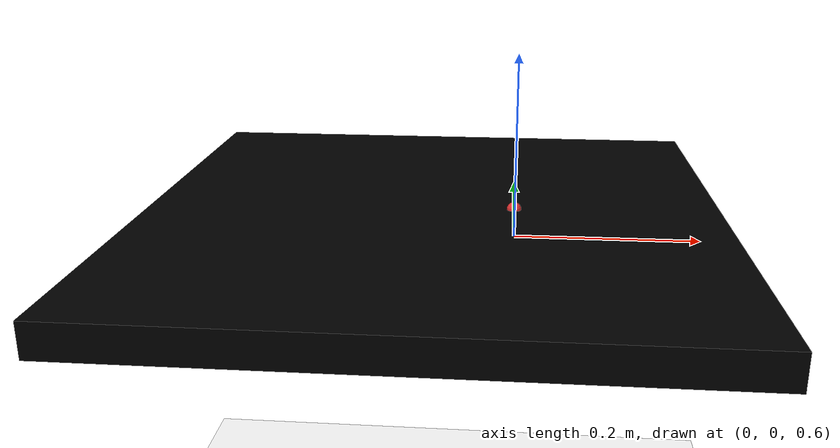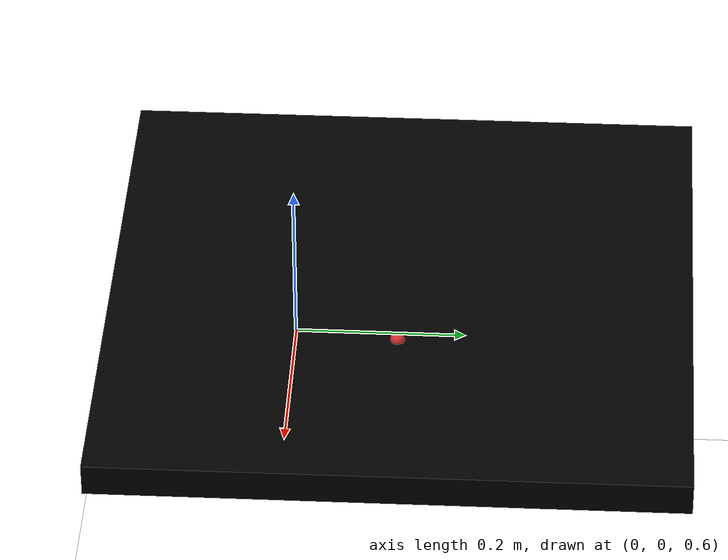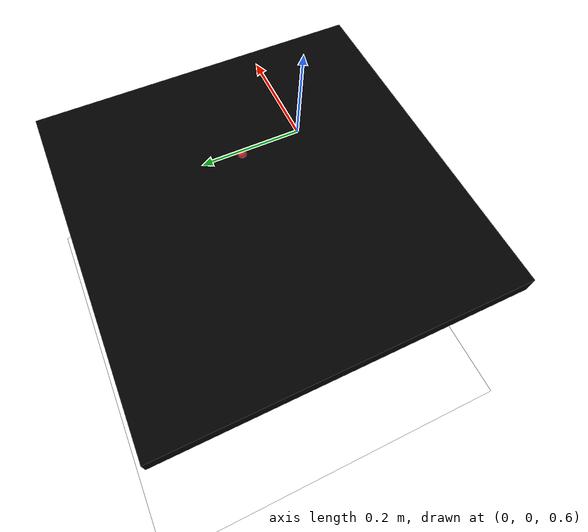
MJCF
<mujoco model="two_bins_arena">
  <asset>
    <texture builtin="gradient" height="256" rgb1=".9 .9 1." rgb2=".2 .3 .4" type="skybox" width="256"/>
    <texture builtin="checker" height="512" name="texplane" rgb1=".2 .3 .4" rgb2=".1 0.15 0.2" type="2d" width="512"/>
    <texture file="../textures/light-wood.png" type="2d" name="tex-light-wood"/>
    <texture file="../textures/dark-wood.png" type="2d" name="tex-dark-wood"/>
    <material name="light-wood" reflectance="0.5" texrepeat="15 15" texture="tex-light-wood" texuniform="true"/>
    <material name="dark-wood" reflectance="0.5" texrepeat="5 5" texture="tex-dark-wood" texuniform="true"/>
    <material name="floorplane" reflectance="0.5" texrepeat="1 1" texture="texplane" texuniform="true"/>
  </asset>
  <worldbody>
    <geom condim="3" name="floor" pos="0 0 0" rgba="1 1 1 1" size="3 3 .125" type="plane"/>
    <body name="bin1" pos="-0.1 0.12 0.57">
      <geom pos="0 0 0" size="0.35 0.35 0.02" type="box" friction="0.3 0.3 0.1" rgba="0 0 0 1"/>
      <geom pos="0 0 0" size="0.35 0.35 0.02" type="box" conaffinity="0" contype="0" group="1" rgba="0 0 0 1"/>
    </body>
    <body name="bin2" pos="0.0 0.71 0.67">
    </body>

    <body name="target" pos="0.0 0.12 0.59">
      <joint armature="0" axis="1 0 0" damping="0" limited="true" name="target_x" pos="0 0 0" range="-.27 .27" ref=".1" stiffness="0" type="slide"/>
      <joint armature="0" axis="0 1 0" damping="0" limited="true" name="target_y" pos="0 0 0" range="-.27 .27" ref="-.1" stiffness="0" type="slide"/>
      <geom conaffinity="0" contype="0" name="target" pos="0 0 0" rgba="0.9 0.2 0.2 1" size=".009" type="sphere"/>
    </body>

    <!--body name="stick" pos="0.0 0.12 0.57"-->
      <!--geom friction="0.9" fromto="0 0 1.45 0 0 1.05" name="torso_geom" size="0.05" type="capsule"/-->

    <light diffuse=".8 .8 .8" dir="0 -.15 -1" directional="false" pos="1 1 4.0" specular="0.3 0.3 0.3" castshadow="false"/>
    <light diffuse=".8 .8 .8" dir="0 -.15 -1" directional="false" pos="-3. -3. 4.0" specular="0.3 0.3 0.3" castshadow="false"/>
    <!-- front view -->
    <camera mode="fixed" name="frontview" pos="1.6 0.4 1.45" quat="0.56 0.43 0.43 0.56"/>
    <!-- bird view -->
    <camera mode="fixed" name="birdview" pos="-0.2 0.4 3.0" quat="0.7071 0 0 0.7071"/>
    <!-- agent view -->
    <camera mode="fixed" name="agentview" pos="1.0 0.4 1.75" quat="0.653 0.271 0.271 0.653"/>

    <camera mode="fixed" name="rlview1" pos="-0.1 -0.88 1.57" quat="0.9238795325112867 0.3826834323650898 0 0"/>
    <camera mode="fixed" name="rlview2" pos="1.0 0.12 1.57" quat="0.6532814824381883 0.2705980500730985 0.27059805007309845 0.6532814824381882"/>
    <camera mode="fixed" name="rlview1_1" pos="-0.1 -0.88 1.57" quat="0.923 .382 -.017 .040"/>
    <camera mode="fixed" name="rlview2_1" pos="1.0 0.12 1.57" quat=".624 .282 .259 .681"/>

    <camera mode="fixed" name="rlview1_2" pos="-0.1 -0.98 1.57" quat="0.923 .382 -.017 .040"/>
    <camera mode="fixed" name="rlview2_2" pos="1.1 0.12 1.57" quat=".624 .282 .259 .681"/>
  </worldbody>
</mujoco>
